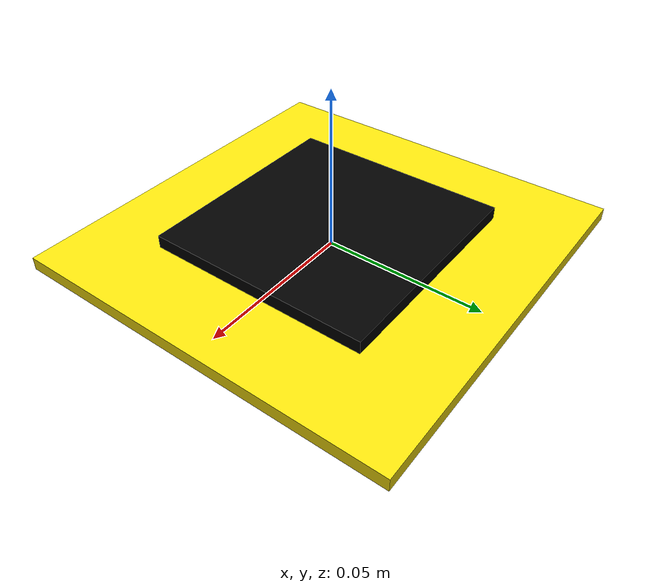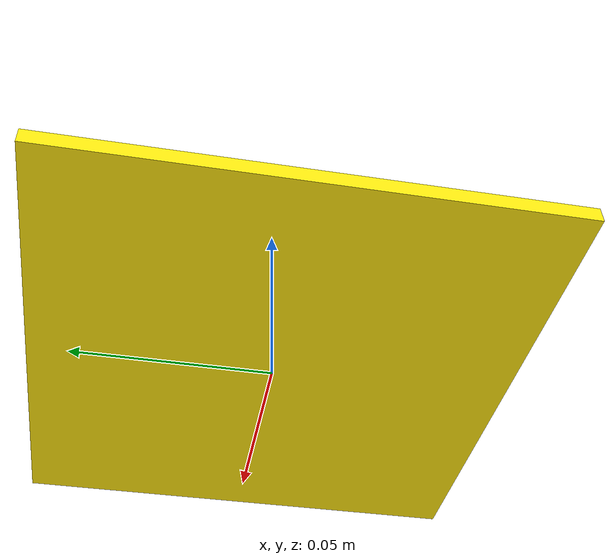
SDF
<?xml version="1.0"?>
<sdf version="1.9">
  <model name="hazard_marker">
    <static>true</static>
    <link name="link">
      <visual name="marker">
        <pose>0 0 0.002 0 0 0</pose>
        <geometry><box><size>0.12 0.12 0.004</size></box></geometry>
        <material>
          <ambient>1 0.9 0.05 1</ambient>
          <diffuse>1 0.9 0.05 1</diffuse>
          <specular>0.1 0.1 0.1 1</specular>
        </material>
      </visual>
      <visual name="symbol">
        <pose>0 0 0.006 0 0 0</pose>
        <geometry><box><size>0.07 0.07 0.004</size></box></geometry>
        <material>
          <ambient>0 0 0 1</ambient>
          <diffuse>0 0 0 1</diffuse>
        </material>
      </visual>
    </link>
  </model>
</sdf>
